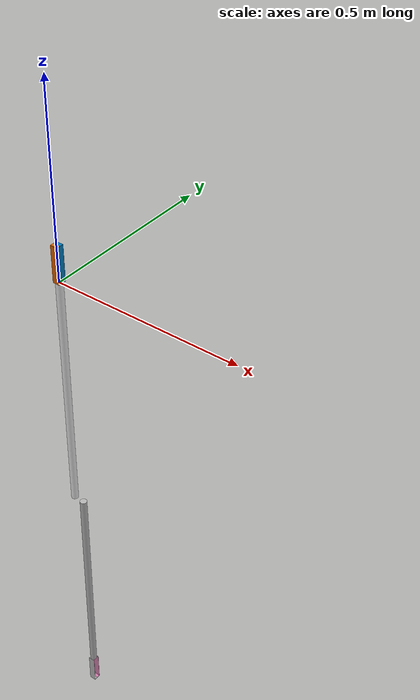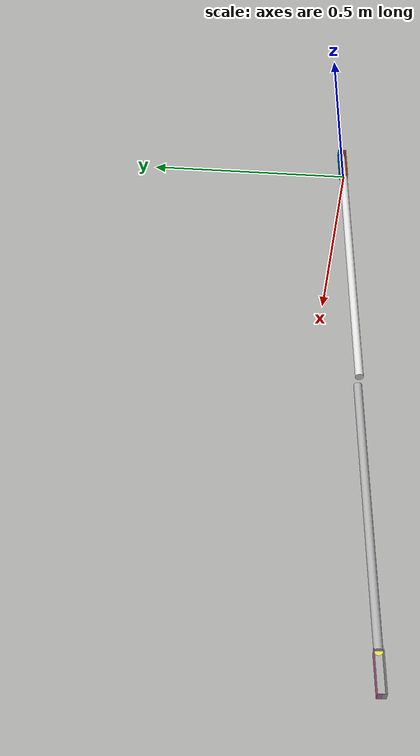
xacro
<?xml version='1.0'?>
<robot xmlns:xacro="http://www.ros.org/wiki/xacro" name='gibbon'>

    <xacro:property name="arm_radius" value="0.01" />
    <xacro:property name="arm_len" value="0.7" />
    <xacro:property name="arm_mass" value="1.0" />
    <xacro:property name="width" value="0.2" />
    <xacro:property name="polelen" value="0.0" />

    <material name="grey1"><color rgba="0.7 0.7 0.7 1"/></material>
    <material name="grey2"><color rgba="0.9 0.9 0.9 1"/></material>

    <xacro:macro name="default_inertial" params="mass">
      <inertial>
        <mass value="${mass}" />
        <inertia ixx="1.0" ixy="0.0" ixz="0.0" iyy="1.0" iyz="0.0" izz="1.0" />
      </inertial>
    </xacro:macro>

    <xacro:macro name="arm_inertial" params="mass len">
      <inertial>
        <mass value="${mass}" />
        <inertia ixx="${1.0 / 3.0 * mass * len * len}" ixy="0.0" ixz="0.0" iyy="0" iyz="0.0" izz="0.0" />
      </inertial>
    </xacro:macro>

    <link name="gibbon__link_1">
      <visual>
        <origin rpy="0 0 0" xyz="0 0 -${arm_len/2}"/>
        <material name="grey2"/>
        <geometry>
          <cylinder radius="${arm_radius}" length="${arm_len}"/>
        </geometry>
      </visual>
      <collision>
        <origin rpy="0 0 0" xyz="0 0 -${arm_len/2}"/>
        <geometry>
          <cylinder radius="${arm_radius}" length="${arm_len}"/>
        </geometry>
      </collision>
      <xacro:arm_inertial mass="${arm_mass}" len="${arm_len}"/>
    </link>

    <link name="gibbon__link_2">
      <visual>
        <origin rpy="0 0 0" xyz="${arm_radius*2} 0 -${arm_len/2}"/>
        <material name="grey1"/>
        <geometry>
          <cylinder radius="${arm_radius}" length="${arm_len}"/>
        </geometry>
      </visual>
      <collision>
        <origin rpy="0 0 0" xyz="${arm_radius*2} 0 -${arm_len/2}"/>
        <geometry>
          <cylinder radius="${arm_radius}" length="${arm_len}"/>
        </geometry>
      </collision>
      <xacro:arm_inertial mass="${arm_mass}" len="${arm_len}"/>
    </link>

    <joint name="link_1__link_2" type="revolute">
      <parent link="gibbon__link_1"/>
      <child link="gibbon__link_2"/>
      <limit effort="10000.0" lower="${-pi}" upper="${pi}" velocity="10.0"/>
      <origin rpy="0 0 0" xyz="${arm_radius} 0 -${arm_len}"/>
      <dynamics friction="0" damping="0.001"/>
    </joint>
    <transmission name="link_1__link_2_trans">
      <type>transmission_interface/SimpleTransmission</type>
      <actuator name="$link_1__link_2_motor">
        <hardwareInterface>hardware_interface/EffortJointInterface</hardwareInterface>
        <mechanicalReduction>1</mechanicalReduction>
      </actuator>
      <joint name="link_1__link_2">
        <hardwareInterface>hardware_interface/EffortJointInterface</hardwareInterface>
      </joint>
    </transmission>

    <joint name="link_1__gripper" type="fixed">
      <parent link="gibbon__link_1"/>
      <child link="gibbon__link_1_gripper_pole"/>
      <origin rpy="0 -${pi/2} 0" xyz="0 0 0"/>
    </joint>

    <joint name="link_2__gripper" type="fixed">
      <parent link="gibbon__link_2"/>
      <child link="gibbon__link_2_gripper_pole"/>
      <origin rpy="0 ${pi/2} 0" xyz="${arm_radius*2} 0 -${arm_len}"/>
    </joint>

    <link name="gibbon__link_1_gripper_pole">
      <visual>
        <geometry>
          <cylinder length="${polelen}" radius="0.01"/>
        </geometry>
        <origin xyz="0 0 0" rpy="0 0 0 "/>
      </visual>
      <collision>
        <geometry>
          <cylinder length="${polelen}" radius="0.01"/>
        </geometry>
        <origin xyz="0 0 0" rpy="0 0 0 "/>
      </collision>
      <xacro:default_inertial mass="0.001"/>
    </link>

    <link name="gibbon__link_2_gripper_pole">
      <visual>
        <geometry>
          <cylinder length="${polelen}" radius="0.01"/>
        </geometry>
        <origin xyz="0 0 0" rpy="0 0 0 "/>
      </visual>
      <collision>
        <geometry>
          <cylinder length="${polelen}" radius="0.01"/>
        </geometry>
        <origin xyz="0 0 0" rpy="0 0 0 "/>
      </collision>
      <xacro:default_inertial mass="0.001"/>
    </link>

    <xacro:macro name="gripper" params="prefix reflect link_name">
      <joint name="${link_name}_${prefix}_gripper_joint" type="revolute">
        <axis xyz="0 0 ${reflect}"/>
        <limit effort="100000.0" lower="0.0" upper="0.548" velocity="3.14"/>
        <origin rpy="0 0 0" xyz="${polelen} ${reflect*0.01} 0"/>
        <parent link="gibbon__${link_name}_gripper_pole"/>
        <child link="gibbon__${link_name}_${prefix}_gripper"/>
      </joint>
      <transmission name="${link_name}_${prefix}_gripper_joint_trans">
        <type>transmission_interface/SimpleTransmission</type>
        <actuator name="$${link_name}_${prefix}_gripper_joint_motor">
          <hardwareInterface>hardware_interface/PositionJointInterface</hardwareInterface>
          <mechanicalReduction>1</mechanicalReduction>
        </actuator>
        <joint name="${link_name}_${prefix}_gripper_joint">
          <hardwareInterface>hardware_interface/PositionJointInterface</hardwareInterface>
        </joint>
      </transmission>
      <link name="gibbon__${link_name}_${prefix}_gripper">
        <visual>
          <origin rpy="${reflect*pi/2} 0 ${reflect*pi/2}" xyz="0.05 0 0"/>
          <geometry>
            <box size="0.001 0.02 0.1"/>
          </geometry>
        </visual>
        <collision>
          <geometry>
            <box size="0.001 0.02 0.1"/>
          </geometry>
          <origin rpy="${reflect*pi/2} 0 ${reflect*pi/2}" xyz="0.05 0 0"/>
        </collision>
        <visual>
          <origin rpy="0 0 0" xyz="0.1 ${-1*reflect*0.005} 0"/>
          <geometry>
            <box size="0.001 0.01 0.02"/>
          </geometry>
        </visual>
        <collision>
          <geometry>
            <box size="0.001 0.01 0.02"/>
          </geometry>
          <origin rpy="0 0 0" xyz="0.1 ${-1*reflect*0.005} 0"/>
        </collision>
        <xacro:default_inertial mass="0.05"/>
      </link>
    </xacro:macro>

    <xacro:gripper prefix="left" reflect="1" link_name="link_1" />
    <xacro:gripper prefix="right" reflect="-1" link_name="link_1" />
    <xacro:gripper prefix="left" reflect="1" link_name="link_2" />
    <xacro:gripper prefix="right" reflect="-1" link_name="link_2" />

    <gazebo>
      <plugin name="gazebo_ros_control" filename="libgazebo_ros_control.so">
        <robotNamespace>/gibbon</robotNamespace>
      </plugin>
    </gazebo>
</robot>
